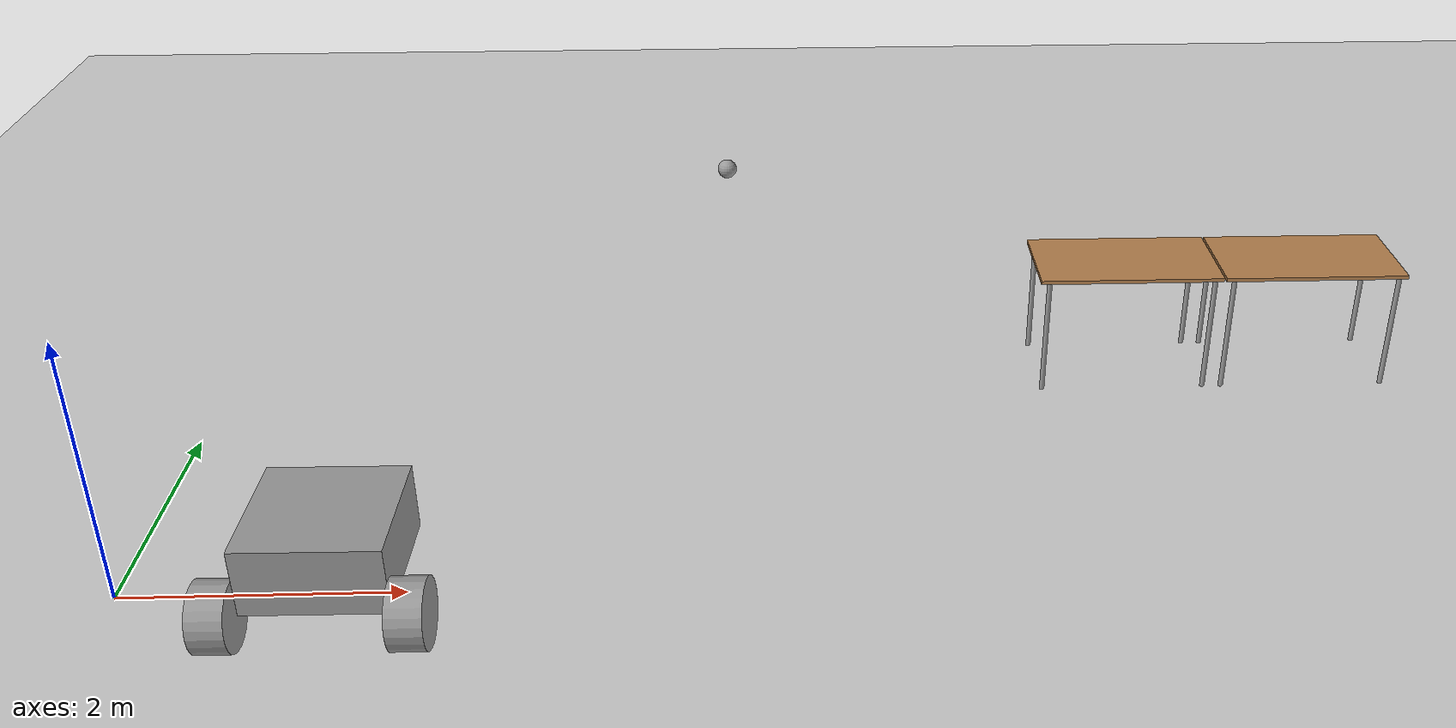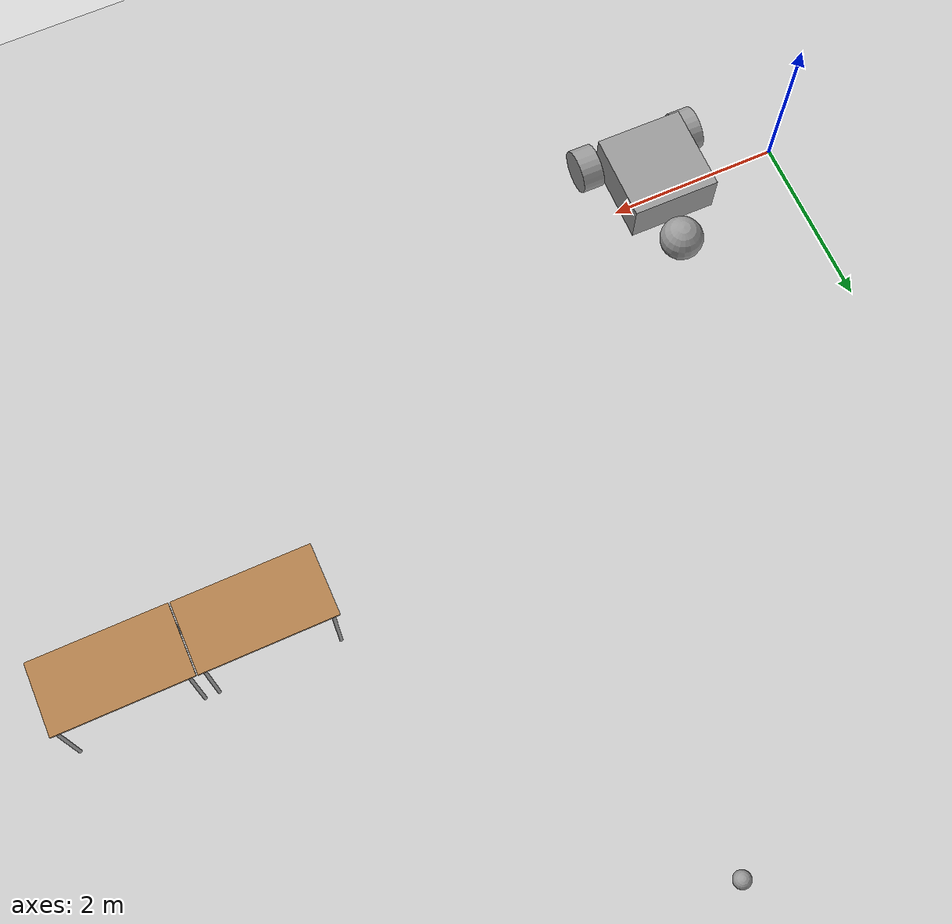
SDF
<sdf version="1.6">
 <world name="default">
  <model name="ground_plane">
   <static>1</static>
   <link name="link">
    <collision name="collision">
     <geometry><plane><normal>0 0 1</normal><size>100 100</size></plane></geometry>
     <surface><friction><ode><mu>100</mu><mu2>50</mu2></ode></friction></surface>
    </collision>
    <visual name="visual">
     <cast_shadows>0</cast_shadows>
     <geometry><plane><normal>0 0 1</normal><size>100 100</size></plane></geometry>
     <material>
      <script><uri>file://media/materials/scripts/gazebo.material</uri><name>Gazebo/Grey</name></script>
     </material>
    </visual>
   </link>
  </model>
  <model name="3WRobot">
   <link name="link_0">
    <pose>0.0625 -0.00375 0.1875 0 -0 0</pose>
    <inertial>
     <mass>1</mass>
     <inertia>
      <ixx>0.166667</ixx>
      <ixy>0</ixy>
      <ixz>0</ixz>
      <iyy>0.166667</iyy>
      <iyz>0</iyz>
      <izz>0.166667</izz>
     </inertia>
    </inertial>
    <visual name="visual">
     <geometry><box><size>1 1 0.5</size></box></geometry>
     <material>
      <lighting>1</lighting>
      <script><uri>file://media/materials/scripts/gazebo.material</uri><name>Gazebo/Grey</name></script>
      <shader type="pixel"><normal_map>__default__</normal_map></shader>
      <ambient>0.3 0.3 0.3 1</ambient>
      <diffuse>0.7 0.7 0.7 1</diffuse>
      <specular>0.01 0.01 0.01 1</specular>
      <emissive>0 0 0 1</emissive>
     </material>
    </visual>
    <collision name="collision">
     <geometry><box><size>1 1 0.5</size></box></geometry>
     <surface>
      <friction>
       <ode><mu>1</mu><mu2>1</mu2><fdir1>0 0 0</fdir1><slip1>0</slip1><slip2>0</slip2></ode>
       <torsional>
        <coefficient>1</coefficient>
        <patch_radius>0</patch_radius>
        <surface_radius>0</surface_radius>
        <use_patch_radius>1</use_patch_radius>
        <ode><slip>0</slip></ode>
       </torsional>
      </friction>
      <bounce><restitution_coefficient>0</restitution_coefficient><threshold>1e+06</threshold></bounce>
      <contact>
       <collide_without_contact>0</collide_without_contact>
       <collide_without_contact_bitmask>1</collide_without_contact_bitmask>
       <collide_bitmask>1</collide_bitmask>
       <ode>
        <soft_cfm>0</soft_cfm>
        <soft_erp>0.2</soft_erp>
        <kp>1e+13</kp>
        <kd>1</kd>
        <max_vel>0.01</max_vel>
        <min_depth>0</min_depth>
       </ode>
       <bullet>
        <split_impulse>1</split_impulse>
        <split_impulse_penetration_threshold>-0.01</split_impulse_penetration_threshold>
        <soft_cfm>0</soft_cfm>
        <soft_erp>0.2</soft_erp>
        <kp>1e+13</kp>
        <kd>1</kd>
       </bullet>
      </contact>
     </surface>
    </collision>
   </link>
   <link name="link_1">
    <pose>0.8125 -0.00375 -0.0625 0 -0 0</pose>
    <inertial>
     <mass>3.80779</mass>
     <inertia>
      <ixx>0.928506</ixx>
      <ixy>0</ixy>
      <ixz>0</ixz>
      <iyy>0.928506</iyy>
      <iyz>0</iyz>
      <izz>0.928506</izz>
     </inertia>
    </inertial>
    <visual name="visual">
     <geometry><sphere><radius>0.25</radius></sphere></geometry>
     <material>
      <lighting>1</lighting>
      <script><uri>file://media/materials/scripts/gazebo.material</uri><name>Gazebo/Grey</name></script>
      <shader type="pixel"><normal_map>__default__</normal_map></shader>
      <ambient>0.3 0.3 0.3 1</ambient>
      <diffuse>0.7 0.7 0.7 1</diffuse>
      <specular>0.01 0.01 0.01 1</specular>
      <emissive>0 0 0 1</emissive>
     </material>
    </visual>
    <collision name="collision">
     <geometry><sphere><radius>0.25</radius></sphere></geometry>
     <surface>
      <friction>
       <ode><mu>1</mu><mu2>1</mu2><fdir1>0 0 0</fdir1><slip1>0</slip1><slip2>0</slip2></ode>
       <torsional>
        <coefficient>1</coefficient>
        <patch_radius>0</patch_radius>
        <surface_radius>0</surface_radius>
        <use_patch_radius>1</use_patch_radius>
        <ode><slip>0</slip></ode>
       </torsional>
      </friction>
      <bounce><restitution_coefficient>0</restitution_coefficient><threshold>1e+06</threshold></bounce>
      <contact>
       <collide_without_contact>0</collide_without_contact>
       <collide_without_contact_bitmask>1</collide_without_contact_bitmask>
       <collide_bitmask>1</collide_bitmask>
       <ode>
        <soft_cfm>0</soft_cfm>
        <soft_erp>0.2</soft_erp>
        <kp>1e+13</kp>
        <kd>1</kd>
        <max_vel>0.01</max_vel>
        <min_depth>0</min_depth>
       </ode>
       <bullet>
        <split_impulse>1</split_impulse>
        <split_impulse_penetration_threshold>-0.01</split_impulse_penetration_threshold>
        <soft_cfm>0</soft_cfm>
        <soft_erp>0.2</soft_erp>
        <kp>1e+13</kp>
        <kd>1</kd>
       </bullet>
      </contact>
     </surface>
    </collision>
   </link>
   <link name="link_2">
    <pose>-0.4375 0.636449 -0.0625 1.57 -0 0</pose>
    <inertial>
     <mass>1</mass>
     <inertia><ixx>0.145833</ixx><ixy>0</ixy><ixz>0</ixz><iyy>0.145833</iyy><iyz>0</iyz><izz>0.125</izz></inertia>
    </inertial>
    <visual name="visual">
     <geometry><cylinder><radius>0.25</radius><length>0.25</length></cylinder></geometry>
     <material>
      <lighting>1</lighting>
      <script><uri>file://media/materials/scripts/gazebo.material</uri><name>Gazebo/Grey</name></script>
      <shader type="pixel"><normal_map>__default__</normal_map></shader>
      <ambient>0.3 0.3 0.3 1</ambient>
      <diffuse>0.7 0.7 0.7 1</diffuse>
      <specular>0.01 0.01 0.01 1</specular>
      <emissive>0 0 0 1</emissive>
     </material>
    </visual>
    <collision name="collision">
     <geometry><cylinder><radius>0.25</radius><length>0.25</length></cylinder></geometry>
     <surface>
      <friction>
       <ode><mu>1</mu><mu2>1</mu2><fdir1>0 0 0</fdir1><slip1>0</slip1><slip2>0</slip2></ode>
       <torsional>
        <coefficient>1</coefficient>
        <patch_radius>0</patch_radius>
        <surface_radius>0</surface_radius>
        <use_patch_radius>1</use_patch_radius>
        <ode><slip>0</slip></ode>
       </torsional>
      </friction>
      <bounce><restitution_coefficient>0</restitution_coefficient><threshold>1e+06</threshold></bounce>
      <contact>
       <collide_without_contact>0</collide_without_contact>
       <collide_without_contact_bitmask>1</collide_without_contact_bitmask>
       <collide_bitmask>1</collide_bitmask>
       <ode>
        <soft_cfm>0</soft_cfm>
        <soft_erp>0.2</soft_erp>
        <kp>1e+13</kp>
        <kd>1</kd>
        <max_vel>0.01</max_vel>
        <min_depth>0</min_depth>
       </ode>
       <bullet>
        <split_impulse>1</split_impulse>
        <split_impulse_penetration_threshold>-0.01</split_impulse_penetration_threshold>
        <soft_cfm>0</soft_cfm>
        <soft_erp>0.2</soft_erp>
        <kp>1e+13</kp>
        <kd>1</kd>
       </bullet>
      </contact>
     </surface>
    </collision>
   </link>
   <link name="link_2_clone">
    <pose>-0.4375 -0.628949 -0.0625 1.57 -0 0</pose>
    <inertial>
     <mass>1</mass>
     <inertia><ixx>0.145833</ixx><ixy>0</ixy><ixz>0</ixz><iyy>0.145833</iyy><iyz>0</iyz><izz>0.125</izz></inertia>
    </inertial>
    <visual name="visual">
     <geometry><cylinder><radius>0.25</radius><length>0.25</length></cylinder></geometry>
     <material>
      <lighting>1</lighting>
      <script><uri>file://media/materials/scripts/gazebo.material</uri><name>Gazebo/Grey</name></script>
      <shader type="pixel"><normal_map>__default__</normal_map></shader>
      <ambient>0.3 0.3 0.3 1</ambient>
      <diffuse>0.7 0.7 0.7 1</diffuse>
      <specular>0.01 0.01 0.01 1</specular>
      <emissive>0 0 0 1</emissive>
     </material>
    </visual>
    <collision name="collision">
     <geometry><cylinder><radius>0.25</radius><length>0.25</length></cylinder></geometry>
     <surface>
      <friction>
       <ode><mu>1</mu><mu2>1</mu2><fdir1>0 0 0</fdir1><slip1>0</slip1><slip2>0</slip2></ode>
       <torsional>
        <coefficient>1</coefficient>
        <patch_radius>0</patch_radius>
        <surface_radius>0</surface_radius>
        <use_patch_radius>1</use_patch_radius>
        <ode><slip>0</slip></ode>
       </torsional>
      </friction>
      <bounce><restitution_coefficient>0</restitution_coefficient><threshold>1e+06</threshold></bounce>
      <contact>
       <collide_without_contact>0</collide_without_contact>
       <collide_without_contact_bitmask>1</collide_without_contact_bitmask>
       <collide_bitmask>1</collide_bitmask>
       <ode>
        <soft_cfm>0</soft_cfm>
        <soft_erp>0.2</soft_erp>
        <kp>1e+13</kp>
        <kd>1</kd>
        <max_vel>0.01</max_vel>
        <min_depth>0</min_depth>
       </ode>
       <bullet>
        <split_impulse>1</split_impulse>
        <split_impulse_penetration_threshold>-0.01</split_impulse_penetration_threshold>
        <soft_cfm>0</soft_cfm>
        <soft_erp>0.2</soft_erp>
        <kp>1e+13</kp>
        <kd>1</kd>
       </bullet>
      </contact>
     </surface>
    </collision>
   </link>
   <joint name="link_0_JOINT_0" type="revolute">
    <parent>link_0</parent>
    <child>link_2</child>
    <axis>
     <xyz>0 0 1</xyz>
     <use_parent_model_frame>0</use_parent_model_frame>
     <limit>
      <lower>-1.79769e+308</lower>
      <upper>1.79769e+308</upper>
      <effort>-1</effort>
      <velocity>-1</velocity>
     </limit>
     <dynamics>
      <spring_reference>0</spring_reference>
      <spring_stiffness>0</spring_stiffness>
      <damping>0</damping>
     </dynamics>
    </axis>
    <physics>
     <ode><limit><cfm>0</cfm><erp>0.2</erp></limit><suspension><cfm>0</cfm><erp>0.2</erp></suspension></ode>
    </physics>
   </joint>
   <joint name="link_0_JOINT_1" type="revolute">
    <parent>link_0</parent>
    <child>link_2_clone</child>
    <axis>
     <xyz>0 0 1</xyz>
     <use_parent_model_frame>0</use_parent_model_frame>
     <limit>
      <lower>-1.79769e+308</lower>
      <upper>1.79769e+308</upper>
      <effort>-1</effort>
      <velocity>-1</velocity>
     </limit>
     <dynamics>
      <spring_reference>0</spring_reference>
      <spring_stiffness>0</spring_stiffness>
      <damping>0</damping>
     </dynamics>
    </axis>
    <physics>
     <ode><limit><cfm>0</cfm><erp>0.2</erp></limit><suspension><cfm>0</cfm><erp>0.2</erp></suspension></ode>
    </physics>
   </joint>
   <joint name="link_0_JOINT_2" type="ball">
    <parent>link_0</parent>
    <child>link_1</child>
    <physics>
     <ode><limit><cfm>0</cfm><erp>0.2</erp></limit><suspension><cfm>0</cfm><erp>0.2</erp></suspension></ode>
    </physics>
   </joint>
   <static>0</static>
   <pose>1.52541 -0.110541 0.312563 3e-06 7.8e-05 1.56127</pose>
   <plugin name="move_robot" filename="libmove_robot.so"/>
  </model>
  <model name="table">
   <static>1</static>
   <link name="link">
    <collision name="surface">
     <pose>0 0 1 0 -0 0</pose>
     <geometry><box><size>1.5 0.8 0.03</size></box></geometry>
     <surface><friction><ode><mu>0.6</mu><mu2>0.6</mu2></ode></friction></surface>
    </collision>
    <visual name="visual1">
     <pose>0 0 1 0 -0 0</pose>
     <geometry><box><size>1.5 0.8 0.03</size></box></geometry>
     <material>
      <script><uri>file://media/materials/scripts/gazebo.material</uri><name>Gazebo/Wood</name></script>
     </material>
    </visual>
    <collision name="front_left_leg">
     <pose>0.68 0.38 0.5 0 -0 0</pose>
     <geometry><cylinder><radius>0.02</radius><length>1</length></cylinder></geometry>
    </collision>
    <visual name="front_left_leg">
     <pose>0.68 0.38 0.5 0 -0 0</pose>
     <geometry><cylinder><radius>0.02</radius><length>1</length></cylinder></geometry>
     <material>
      <script><uri>file://media/materials/scripts/gazebo.material</uri><name>Gazebo/Grey</name></script>
     </material>
    </visual>
    <collision name="front_right_leg">
     <pose>0.68 -0.38 0.5 0 -0 0</pose>
     <geometry><cylinder><radius>0.02</radius><length>1</length></cylinder></geometry>
    </collision>
    <visual name="front_right_leg">
     <pose>0.68 -0.38 0.5 0 -0 0</pose>
     <geometry><cylinder><radius>0.02</radius><length>1</length></cylinder></geometry>
     <material>
      <script><uri>file://media/materials/scripts/gazebo.material</uri><name>Gazebo/Grey</name></script>
     </material>
    </visual>
    <collision name="back_right_leg">
     <pose>-0.68 -0.38 0.5 0 -0 0</pose>
     <geometry><cylinder><radius>0.02</radius><length>1</length></cylinder></geometry>
    </collision>
    <visual name="back_right_leg">
     <pose>-0.68 -0.38 0.5 0 -0 0</pose>
     <geometry><cylinder><radius>0.02</radius><length>1</length></cylinder></geometry>
     <material>
      <script><uri>file://media/materials/scripts/gazebo.material</uri><name>Gazebo/Grey</name></script>
     </material>
    </visual>
    <collision name="back_left_leg">
     <pose>-0.68 0.38 0.5 0 -0 0</pose>
     <geometry><cylinder><radius>0.02</radius><length>1</length></cylinder></geometry>
    </collision>
    <visual name="back_left_leg">
     <pose>-0.68 0.38 0.5 0 -0 0</pose>
     <geometry><cylinder><radius>0.02</radius><length>1</length></cylinder></geometry>
     <material>
      <script><uri>file://media/materials/scripts/gazebo.material</uri><name>Gazebo/Grey</name></script>
     </material>
    </visual>
   </link>
   <pose>7.50087 3.00487 0 0 -0 0</pose>
  </model>
  <model name="table_0">
   <static>1</static>
   <link name="link">
    <collision name="surface">
     <pose>0 0 1 0 -0 0</pose>
     <geometry><box><size>1.5 0.8 0.03</size></box></geometry>
     <surface><friction><ode><mu>0.6</mu><mu2>0.6</mu2></ode></friction></surface>
    </collision>
    <visual name="visual1">
     <pose>0 0 1 0 -0 0</pose>
     <geometry><box><size>1.5 0.8 0.03</size></box></geometry>
     <material>
      <script><uri>file://media/materials/scripts/gazebo.material</uri><name>Gazebo/Wood</name></script>
     </material>
    </visual>
    <collision name="front_left_leg">
     <pose>0.68 0.38 0.5 0 -0 0</pose>
     <geometry><cylinder><radius>0.02</radius><length>1</length></cylinder></geometry>
    </collision>
    <visual name="front_left_leg">
     <pose>0.68 0.38 0.5 0 -0 0</pose>
     <geometry><cylinder><radius>0.02</radius><length>1</length></cylinder></geometry>
     <material>
      <script><uri>file://media/materials/scripts/gazebo.material</uri><name>Gazebo/Grey</name></script>
     </material>
    </visual>
    <collision name="front_right_leg">
     <pose>0.68 -0.38 0.5 0 -0 0</pose>
     <geometry><cylinder><radius>0.02</radius><length>1</length></cylinder></geometry>
    </collision>
    <visual name="front_right_leg">
     <pose>0.68 -0.38 0.5 0 -0 0</pose>
     <geometry><cylinder><radius>0.02</radius><length>1</length></cylinder></geometry>
     <material>
      <script><uri>file://media/materials/scripts/gazebo.material</uri><name>Gazebo/Grey</name></script>
     </material>
    </visual>
    <collision name="back_right_leg">
     <pose>-0.68 -0.38 0.5 0 -0 0</pose>
     <geometry><cylinder><radius>0.02</radius><length>1</length></cylinder></geometry>
    </collision>
    <visual name="back_right_leg">
     <pose>-0.68 -0.38 0.5 0 -0 0</pose>
     <geometry><cylinder><radius>0.02</radius><length>1</length></cylinder></geometry>
     <material>
      <script><uri>file://media/materials/scripts/gazebo.material</uri><name>Gazebo/Grey</name></script>
     </material>
    </visual>
    <collision name="back_left_leg">
     <pose>-0.68 0.38 0.5 0 -0 0</pose>
     <geometry><cylinder><radius>0.02</radius><length>1</length></cylinder></geometry>
    </collision>
    <visual name="back_left_leg">
     <pose>-0.68 0.38 0.5 0 -0 0</pose>
     <geometry><cylinder><radius>0.02</radius><length>1</length></cylinder></geometry>
     <material>
      <script><uri>file://media/materials/scripts/gazebo.material</uri><name>Gazebo/Grey</name></script>
     </material>
    </visual>
   </link>
   <pose>9.0179 3.00302 0 0 -0 0</pose>
  </model>
  <model name="my_ball">
   <link name="link_0">
    <inertial>
     <mass>1</mass>
     <inertia><ixx>0.1</ixx><ixy>0</ixy><ixz>0</ixz><iyy>0.1</iyy><iyz>0</iyz><izz>0.1</izz></inertia>
    </inertial>
    <visual name="visual">
     <geometry><sphere><radius>0.1</radius></sphere></geometry>
     <material>
      <lighting>1</lighting>
      <script><uri>file://media/materials/scripts/gazebo.material</uri><name>Gazebo/Grey</name></script>
      <shader type="pixel"><normal_map>__default__</normal_map></shader>
      <ambient>1 1 1 1</ambient>
      <diffuse>1 1 1 1</diffuse>
      <specular>1 1 1 1</specular>
      <emissive>1 1 1 1</emissive>
     </material>
    </visual>
    <collision name="collision">
     <geometry><sphere><radius>0.1</radius></sphere></geometry>
     <surface>
      <friction>
       <ode><mu>1</mu><mu2>1</mu2><fdir1>0 0 0</fdir1><slip1>0</slip1><slip2>0</slip2></ode>
       <torsional>
        <coefficient>1</coefficient>
        <patch_radius>0</patch_radius>
        <surface_radius>0</surface_radius>
        <use_patch_radius>1</use_patch_radius>
        <ode><slip>0</slip></ode>
       </torsional>
      </friction>
      <bounce><restitution_coefficient>0</restitution_coefficient><threshold>1e+06</threshold></bounce>
      <contact>
       <collide_without_contact>0</collide_without_contact>
       <collide_without_contact_bitmask>1</collide_without_contact_bitmask>
       <collide_bitmask>1</collide_bitmask>
       <ode>
        <soft_cfm>0</soft_cfm>
        <soft_erp>0.2</soft_erp>
        <kp>1e+13</kp>
        <kd>1</kd>
        <max_vel>0.01</max_vel>
        <min_depth>0</min_depth>
       </ode>
       <bullet>
        <split_impulse>1</split_impulse>
        <split_impulse_penetration_threshold>-0.01</split_impulse_penetration_threshold>
        <soft_cfm>0</soft_cfm>
        <soft_erp>0.2</soft_erp>
        <kp>1e+13</kp>
        <kd>1</kd>
       </bullet>
      </contact>
     </surface>
    </collision>
   </link>
   <static>0</static>
   <pose>4.12099 7.25859 0.1 0 -0 0</pose>
  </model>
 </world>
</sdf>
